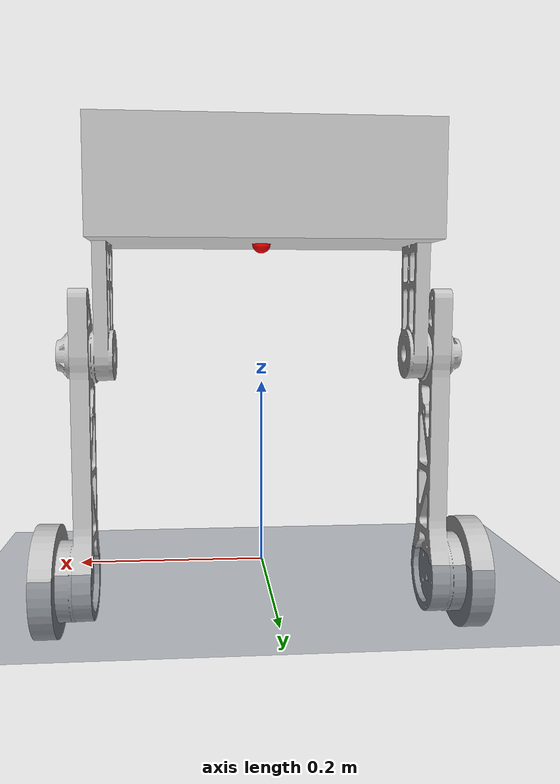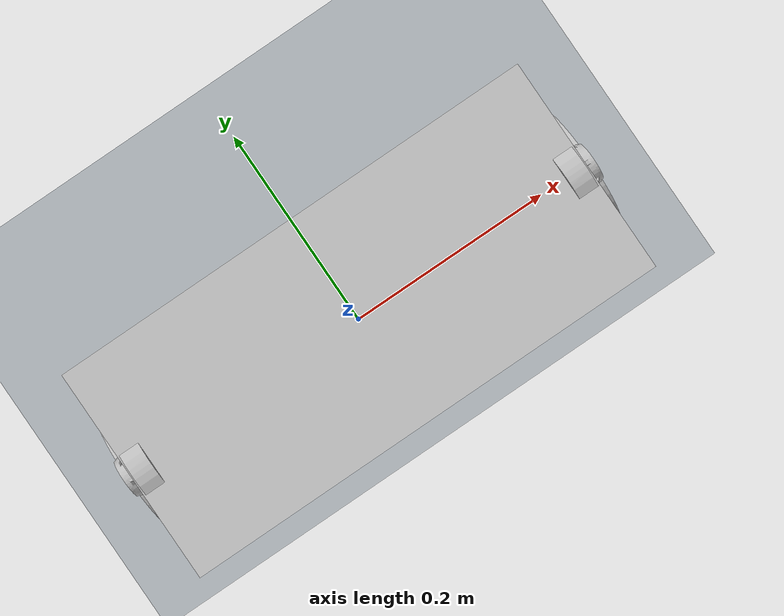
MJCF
<?xml version="1.0" encoding="utf-8"?>
<mujoco model="imcawl">
  <compiler angle="radian" meshdir="../resources/robots/imcawl/meshes" autolimits="true"/>
  <!-- cone=elliptic + impratio=10：轮式机器人标准配置。默认 pyramidal 摩擦锥对滚动接触有
       切向力伪影——低速表现为无故缓慢爬行（后拉），高速放大成速度调节环振荡发散（1.8m/s 翻车）。 -->
  <option timestep="0.005" gravity="0 0 -9.81" integrator="implicitfast"
          cone="elliptic" impratio="10"/>

  <default>
    <joint damping="0" armature="0" frictionloss="0"/>
    <!-- 摩擦滑动分量对齐 Isaac Gym 的 static/dynamic_friction=0.5（legged_robot_config.py:60-61）-->
    <geom contype="1" conaffinity="1" condim="3" friction="0.5 0.005 0.0001"/>
    <default class="visual">
      <geom type="mesh" contype="0" conaffinity="0" group="2" density="0"/>
    </default>
    <default class="collision">
      <!-- conaffinity=0：机器人碰撞体之间互不碰撞（base box vs 轮子等），只与地面(contype/conaffinity=1)碰撞。
           对齐 Isaac Gym 训练配置 self_collisions=1（自碰撞关闭），否则低蹲时轮子撞基座盒会产生训练时没见过的接触力。 -->
      <geom group="3" contype="1" conaffinity="0"/>
    </default>
    <motor ctrllimited="true"/>
  </default>

  <asset>
    <!-- base_link.STL 达 61MB、面数超 MuJoCo 上限(20万)，故不加载；基座可视化用 box 近似 -->
    <mesh name="lf0_link"     file="lf0_link.STL"/>
    <mesh name="lf1_link"     file="lf1_link.STL"/>
    <mesh name="l_wheel_link" file="l_wheel_link.STL"/>
    <mesh name="rf0_link"     file="rf0_link.STL"/>
    <mesh name="rf1_link"     file="rf1_link.STL"/>
    <mesh name="r_wheel_link" file="r_wheel_link.STL"/>

    <material name="metal" rgba="0.75 0.75 0.75 1"/>
    <texture name="grid" type="2d" builtin="checker" rgb1="0.2 0.3 0.4" rgb2="0.1 0.15 0.2"
             width="512" height="512"/>
    <material name="grid" texture="grid" texrepeat="4 4" reflectance="0.1"/>
  </asset>

  <worldbody>
    <light directional="true" pos="0 0 4" dir="0 0 -1" diffuse="0.8 0.8 0.8"/>
    <geom name="floor" type="plane" size="20 20 0.1" material="grid" condim="3"
          friction="0.5 0.005 0.0001"/>

    <body name="base_link" pos="0 0 0.35">
      <freejoint name="floating_base"/>
      <inertial pos="-0.00320329590275952 -0.00232153751605896 0.0582726245201776"
                mass="9.11531220901422"
                fullinertia="0.0274455503544563 0.0138876649959725 0.0291645123153101
                             -3.8368445769211e-05 -3.9546470233678e-07 1.15247625253083e-05"/>
      <geom class="visual" type="box" size="0.18 0.08 0.06" pos="0 0 0.06" material="metal"/>
      <geom class="collision" type="box" size="0.18 0.08 0.06" pos="0 0 0.06"/>
      <site name="imu" pos="0 0 0" size="0.01" rgba="1 0 0 1"/>

      <!-- 左腿 -->
      <body name="lf0_link" pos="-0.17865 0 0.09">
        <joint name="lf0_joint" type="hinge" axis="-1 0 0" range="-0.8 1.9"/>
        <inertial pos="0.00270651110954748 0.000637033380984982 -0.145506188241601"
                  mass="0.351283706943026"
                  fullinertia="0.00145377762173734 0.00136091715210196 0.000144677169106704
                               7.38647050342215e-07 4.92627488200562e-06 2.46862332961779e-05"/>
        <geom class="visual" mesh="lf0_link" material="metal"/>
        <geom class="collision" type="mesh" mesh="lf0_link"/>
        <body name="lf1_link" pos="-0.026 0 -0.21">
          <joint name="lf1_joint" type="hinge" axis="-1 0 0" range="-2.4 2.4"/>
          <inertial pos="-0.000850510164682433 0.00107666092275464 -0.166656941936174"
                    mass="0.624467028060214"
                    fullinertia="0.00457903877279553 0.00432606076800462 0.000325813470593527
                                 1.73606207520501e-08 -2.80029011009679e-08 0.000103495585582633"/>
          <geom class="visual" mesh="lf1_link" material="metal"/>
          <geom class="collision" type="mesh" mesh="lf1_link"/>
          <body name="l_wheel_link" pos="-0.0432 0 -0.25">
            <joint name="l_wheel_joint" type="hinge" axis="-1 0 0" limited="false"/>
            <inertial pos="0.0108250604590236 0 0"
                      mass="0.257421598889876"
                      fullinertia="0.000659923797581141 0.000343928011379725 0.000343928011379725
                                   0 0 0"/>
            <geom class="visual" mesh="l_wheel_link" material="metal"/>
            <!-- 轮胶面实测（STL 顶点范围）在 x∈[0, 0.025]，单侧偏置，圆柱须与之对齐 -->
            <geom class="collision" type="cylinder" fromto="0 0 0  0.025 0 0" size="0.0625"/>
          </body>
        </body>
      </body>

      <!-- 右腿 -->
      <body name="rf0_link" pos="0.17865 0 0.09">
        <joint name="rf0_joint" type="hinge" axis="1 0 0" range="-1.9 0.8"/>
        <inertial pos="-0.00270651044534218 0.000634856613628561 -0.145506481490274"
                  mass="0.351283712720675"
                  fullinertia="0.00145377762218643 0.00136091713941202 0.000144677182302666
                               -7.3699551841945e-07 -4.92605378444753e-06 2.46861862696675e-05"/>
        <geom class="visual" mesh="rf0_link" material="metal"/>
        <geom class="collision" type="mesh" mesh="rf0_link"/>
        <body name="rf1_link" pos="0.026 0 -0.21">
          <joint name="rf1_joint" type="hinge" axis="1 0 0" range="-2.4 2.4"/>
          <inertial pos="0.000850510164682683 0.00108704174866658 -0.166656941936173"
                    mass="0.624467028060215"
                    fullinertia="0.00457903877279553 0.00432606076800462 0.000325813470593528
                                 1.73606207583112e-08 2.80029010963341e-08 0.000103482290449355"/>
          <geom class="visual" mesh="rf1_link" material="metal"/>
          <geom class="collision" type="mesh" mesh="rf1_link"/>
          <body name="r_wheel_link" pos="0.0432 0 -0.25">
            <joint name="r_wheel_joint" type="hinge" axis="1 0 0" limited="false"/>
            <inertial pos="-0.0108250604590236 0 0"
                      mass="0.257421598889876"
                      fullinertia="0.000659923797581141 0.000343928011379725 0.000343928011379725
                                   0 0 0"/>
            <geom class="visual" mesh="r_wheel_link" material="metal"/>
            <!-- 轮胶面实测（STL 顶点范围）在 x∈[-0.025, 0]，单侧偏置，圆柱须与之对齐 -->
            <geom class="collision" type="cylinder" fromto="-0.025 0 0  0 0 0" size="0.0625"/>
          </body>
        </body>
      </body>
    </body>
  </worldbody>

  <actuator>
    <!-- 顺序必须与策略 DOF 顺序一致：[lf0, lf1, l_wheel, rf0, rf1, r_wheel] -->
    <motor name="lf0_joint"     joint="lf0_joint"     gear="1" ctrlrange="-30 30"/>
    <motor name="lf1_joint"     joint="lf1_joint"     gear="1" ctrlrange="-30 30"/>
    <motor name="l_wheel_joint" joint="l_wheel_joint" gear="1" ctrlrange="-5 5"/>
    <motor name="rf0_joint"     joint="rf0_joint"     gear="1" ctrlrange="-30 30"/>
    <motor name="rf1_joint"     joint="rf1_joint"     gear="1" ctrlrange="-30 30"/>
    <motor name="r_wheel_joint" joint="r_wheel_joint" gear="1" ctrlrange="-5 5"/>
  </actuator>

  <sensor>
    <!-- 备用：脚本主要直接从 qpos/qvel + mj_objectVelocity 读取状态，这些传感器仅供调试 -->
    <framequat   name="base_quat"    objtype="site" objname="imu"/>
    <gyro        name="base_gyro"    site="imu"/>
    <accelerometer name="base_acc"   site="imu"/>
  </sensor>
</mujoco>
